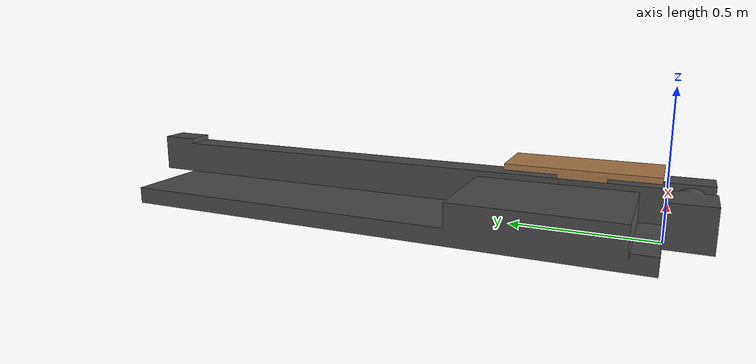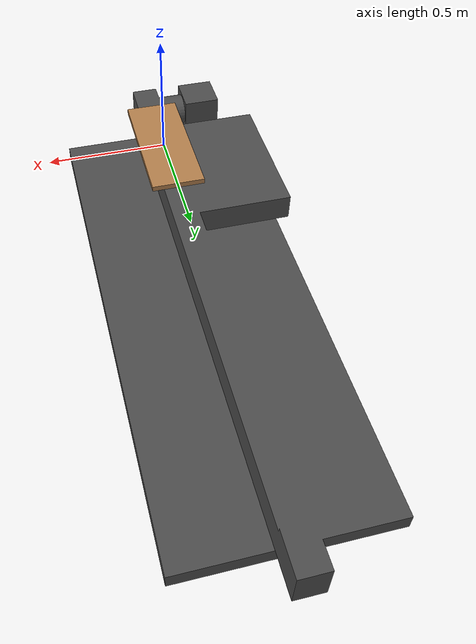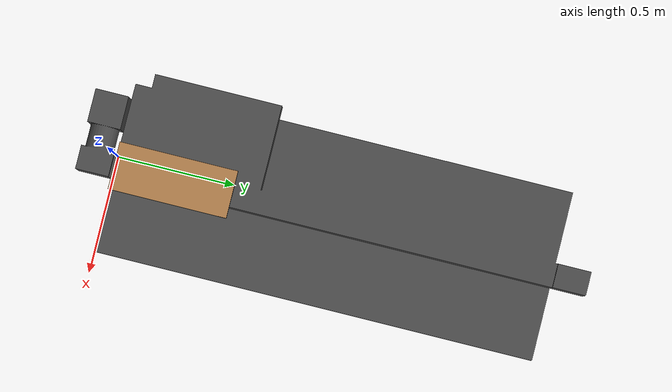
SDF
<?xml version="1.0" ?>
<sdf version="1.5">
  <model name="rail">
    <link name="head">
      <visual name="visual">
        <geometry>
          <mesh>
            <uri>model://rail/meshes/head.stl</uri>
            <scale>0.001 0.001 0.001</scale>
          </mesh>
        </geometry>
        <material>
          <script>
            <uri>file://media/materials/scripts/gazebo.material</uri>
            <name>Gazebo/Wood</name>
          </script>
          <ambient>1 1 1 1</ambient>
        </material>
      </visual>
      <collision name="collision">
        <geometry>
          <mesh>
            <uri>model://rail/meshes/head.stl</uri>
            <scale>0.001 0.001 0.001</scale>
          </mesh>
        </geometry>
      </collision>
      <pose>0 0 0.06 0 0 0</pose>
    </link>

    <link name="base">
      <visual name="visual">
        <geometry>
          <mesh>
            <uri>model://rail/meshes/base.stl</uri>
            <scale>0.001 0.001 0.001</scale>
          </mesh>
        </geometry>
        <material>
          <script>
            <uri>file://media/materials/scripts/gazebo.material</uri>
            <name>Gazebo/DarkGrey</name>
          </script>
          <ambient>1 1 1 1</ambient>
        </material>
      </visual>
      <collision name="collision">
        <geometry>
          <mesh>
            <uri>model://rail/meshes/base.stl</uri>
            <scale>0.001 0.001 0.001</scale>
          </mesh>
        </geometry>
      </collision>
      <pose>0 0 0.06 0 0 0</pose>
    </link>
    <static>1</static>
  </model>
</sdf>
